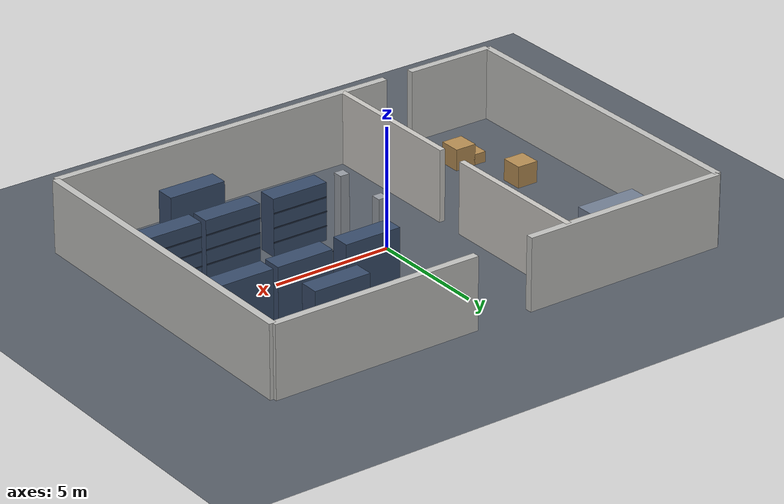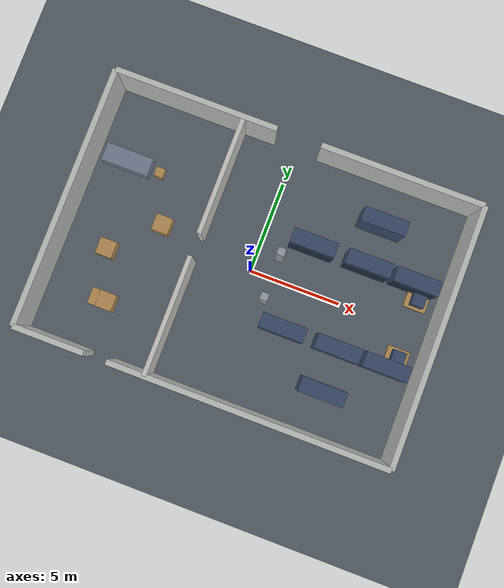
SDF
<?xml version="1.0" ?>
<sdf version="1.9">
  <world name="go2_patrol">

    <gravity>0 0 0</gravity>
    <physics name="2ms" type="dartsim">
      <max_step_size>0.002</max_step_size>
      <real_time_factor>1.0</real_time_factor>
    </physics>

    <!-- Explicit systems so sensors/physics/scene run reliably. -->
    <plugin filename="gz-sim-physics-system" name="gz::sim::systems::Physics"/>
    <plugin filename="gz-sim-sensors-system" name="gz::sim::systems::Sensors">
      <render_engine>ogre2</render_engine>
    </plugin>
    <plugin filename="gz-sim-scene-broadcaster-system" name="gz::sim::systems::SceneBroadcaster"/>
    <plugin filename="gz-sim-user-commands-system" name="gz::sim::systems::UserCommands"/>
    <!-- IMU sensors are handled by a dedicated system plugin (not the Sensors
         system above); without it no /imu topic is produced. -->
    <plugin filename="gz-sim-imu-system" name="gz::sim::systems::Imu"/>

    <scene>
      <ambient>0.42 0.42 0.47</ambient>
      <background>0.62 0.68 0.74</background>
      <grid>false</grid>
      <shadows>false</shadows>
    </scene>

    <!-- Flow-first lighting (iGPU): one soft directional sun with NO shadow cast
         plus two warm point fills inside the hall. Turn cast_shadows on below
         only for a screenshot. -->
    <light type="directional" name="sun">
      <cast_shadows>false</cast_shadows>
      <pose>0 0 10 0 0 0</pose>
      <diffuse>0.78 0.76 0.7 1</diffuse>
      <specular>0.15 0.15 0.15 1</specular>
      <attenuation>
        <range>1000</range>
        <constant>0.9</constant>
        <linear>0.01</linear>
        <quadratic>0.001</quadratic>
      </attenuation>
      <direction>-0.45 0.1 -0.9</direction>
    </light>

    <light type="point" name="hall_fill_a">
      <cast_shadows>false</cast_shadows>
      <pose>1.5 3.0 3.2 0 0 0</pose>
      <diffuse>0.85 0.82 0.75 1</diffuse>
      <specular>0.05 0.05 0.05 1</specular>
      <attenuation>
        <range>25</range>
        <constant>0.7</constant>
        <linear>0.05</linear>
        <quadratic>0.01</quadratic>
      </attenuation>
    </light>

    <light type="point" name="hall_fill_b">
      <cast_shadows>false</cast_shadows>
      <pose>4.0 -3.0 2.6 0 0 0</pose>
      <diffuse>0.7 0.72 0.78 1</diffuse>
      <specular>0.05 0.05 0.05 1</specular>
      <attenuation>
        <range>20</range>
        <constant>0.7</constant>
        <linear>0.06</linear>
        <quadratic>0.01</quadratic>
      </attenuation>
    </light>

    <!-- Warehouse floor (epoxy grey-blue). -->
    <model name="ground_plane">
      <static>true</static>
      <link name="link">
        <collision name="collision">
          <geometry><plane><normal>0 0 1</normal><size>100 100</size></plane></geometry>
        </collision>
        <visual name="visual">
          <geometry><plane><normal>0 0 1</normal><size>100 100</size></plane></geometry>
          <material>
            <ambient>0.30 0.33 0.36 1</ambient>
            <diffuse>0.34 0.37 0.41 1</diffuse>
          </material>
        </visual>
      </link>
    </model>

    <!-- ============ SCENE_BEGIN (go2_scene.py managed) ============ -->
    <model name="scene_indoor">
      <static>true</static>
      <link name="fixed">
        <visual name="vis_0">
          <pose>-5.6000 7.0000 1.5000 0 0 0</pose>
          <geometry><box><size>8.8000 0.3000 3.0000</size></box></geometry>
          <material>
            <ambient>0.760 0.760 0.750 1</ambient>
            <diffuse>0.760 0.760 0.750 1</diffuse>
          </material>
        </visual>
        <collision name="col_0">
          <pose>-5.6000 7.0000 1.5000 0 0 0</pose>
          <geometry><box><size>8.8000 0.3000 3.0000</size></box></geometry>
        </collision>
        <visual name="vis_1">
          <pose>5.6000 7.0000 1.5000 0 0 0</pose>
          <geometry><box><size>8.8000 0.3000 3.0000</size></box></geometry>
          <material>
            <ambient>0.760 0.760 0.750 1</ambient>
            <diffuse>0.760 0.760 0.750 1</diffuse>
          </material>
        </visual>
        <collision name="col_1">
          <pose>5.6000 7.0000 1.5000 0 0 0</pose>
          <geometry><box><size>8.8000 0.3000 3.0000</size></box></geometry>
        </collision>
        <visual name="vis_2">
          <pose>-8.1000 -7.0000 1.5000 0 0 0</pose>
          <geometry><box><size>3.8000 0.3000 3.0000</size></box></geometry>
          <material>
            <ambient>0.760 0.760 0.750 1</ambient>
            <diffuse>0.760 0.760 0.750 1</diffuse>
          </material>
        </visual>
        <collision name="col_2">
          <pose>-8.1000 -7.0000 1.5000 0 0 0</pose>
          <geometry><box><size>3.8000 0.3000 3.0000</size></box></geometry>
        </collision>
        <visual name="vis_3">
          <pose>2.5000 -7.0000 1.5000 0 0 0</pose>
          <geometry><box><size>15.0000 0.3000 3.0000</size></box></geometry>
          <material>
            <ambient>0.760 0.760 0.750 1</ambient>
            <diffuse>0.760 0.760 0.750 1</diffuse>
          </material>
        </visual>
        <collision name="col_3">
          <pose>2.5000 -7.0000 1.5000 0 0 0</pose>
          <geometry><box><size>15.0000 0.3000 3.0000</size></box></geometry>
        </collision>
        <visual name="vis_4">
          <pose>-10.0000 0.0000 1.5000 0 0 0</pose>
          <geometry><box><size>0.3000 14.0000 3.0000</size></box></geometry>
          <material>
            <ambient>0.760 0.760 0.750 1</ambient>
            <diffuse>0.760 0.760 0.750 1</diffuse>
          </material>
        </visual>
        <collision name="col_4">
          <pose>-10.0000 0.0000 1.5000 0 0 0</pose>
          <geometry><box><size>0.3000 14.0000 3.0000</size></box></geometry>
        </collision>
        <visual name="vis_5">
          <pose>10.0000 0.0000 1.5000 0 0 0</pose>
          <geometry><box><size>0.3000 14.0000 3.0000</size></box></geometry>
          <material>
            <ambient>0.760 0.760 0.750 1</ambient>
            <diffuse>0.760 0.760 0.750 1</diffuse>
          </material>
        </visual>
        <collision name="col_5">
          <pose>10.0000 0.0000 1.5000 0 0 0</pose>
          <geometry><box><size>0.3000 14.0000 3.0000</size></box></geometry>
        </collision>
        <visual name="vis_6">
          <pose>-3.0000 -3.8000 1.5000 0 0 0</pose>
          <geometry><box><size>0.2400 6.4000 3.0000</size></box></geometry>
          <material>
            <ambient>0.800 0.790 0.770 1</ambient>
            <diffuse>0.800 0.790 0.770 1</diffuse>
          </material>
        </visual>
        <collision name="col_6">
          <pose>-3.0000 -3.8000 1.5000 0 0 0</pose>
          <geometry><box><size>0.2400 6.4000 3.0000</size></box></geometry>
        </collision>
        <visual name="vis_7">
          <pose>-3.0000 3.8000 1.5000 0 0 0</pose>
          <geometry><box><size>0.2400 6.4000 3.0000</size></box></geometry>
          <material>
            <ambient>0.800 0.790 0.770 1</ambient>
            <diffuse>0.800 0.790 0.770 1</diffuse>
          </material>
        </visual>
        <collision name="col_7">
          <pose>-3.0000 3.8000 1.5000 0 0 0</pose>
          <geometry><box><size>0.2400 6.4000 3.0000</size></box></geometry>
        </collision>
        <visual name="vis_8">
          <pose>2.6000 2.3000 1.2000 0 0 0</pose>
          <geometry><box><size>2.4000 0.8000 2.4000</size></box></geometry>
          <material>
            <ambient>0.220 0.300 0.420 1</ambient>
            <diffuse>0.220 0.300 0.420 1</diffuse>
          </material>
        </visual>
        <collision name="col_8">
          <pose>2.6000 2.3000 1.2000 0 0 0</pose>
          <geometry><box><size>2.4000 0.8000 2.4000</size></box></geometry>
        </collision>
        <visual name="vis_9">
          <pose>2.6000 1.8900 0.6000 0 0 0</pose>
          <geometry><box><size>2.4000 0.0200 0.0500</size></box></geometry>
          <material>
            <ambient>0.130 0.180 0.260 1</ambient>
            <diffuse>0.130 0.180 0.260 1</diffuse>
          </material>
        </visual>
        <collision name="col_9">
          <pose>2.6000 1.8900 0.6000 0 0 0</pose>
          <geometry><box><size>2.4000 0.0200 0.0500</size></box></geometry>
        </collision>
        <visual name="vis_10">
          <pose>2.6000 1.8900 1.2000 0 0 0</pose>
          <geometry><box><size>2.4000 0.0200 0.0500</size></box></geometry>
          <material>
            <ambient>0.130 0.180 0.260 1</ambient>
            <diffuse>0.130 0.180 0.260 1</diffuse>
          </material>
        </visual>
        <collision name="col_10">
          <pose>2.6000 1.8900 1.2000 0 0 0</pose>
          <geometry><box><size>2.4000 0.0200 0.0500</size></box></geometry>
        </collision>
        <visual name="vis_11">
          <pose>2.6000 1.8900 1.8000 0 0 0</pose>
          <geometry><box><size>2.4000 0.0200 0.0500</size></box></geometry>
          <material>
            <ambient>0.130 0.180 0.260 1</ambient>
            <diffuse>0.130 0.180 0.260 1</diffuse>
          </material>
        </visual>
        <collision name="col_11">
          <pose>2.6000 1.8900 1.8000 0 0 0</pose>
          <geometry><box><size>2.4000 0.0200 0.0500</size></box></geometry>
        </collision>
        <visual name="vis_12">
          <pose>5.6000 2.3000 1.2000 0 0 0</pose>
          <geometry><box><size>2.4000 0.8000 2.4000</size></box></geometry>
          <material>
            <ambient>0.220 0.300 0.420 1</ambient>
            <diffuse>0.220 0.300 0.420 1</diffuse>
          </material>
        </visual>
        <collision name="col_12">
          <pose>5.6000 2.3000 1.2000 0 0 0</pose>
          <geometry><box><size>2.4000 0.8000 2.4000</size></box></geometry>
        </collision>
        <visual name="vis_13">
          <pose>5.6000 1.8900 0.6000 0 0 0</pose>
          <geometry><box><size>2.4000 0.0200 0.0500</size></box></geometry>
          <material>
            <ambient>0.130 0.180 0.260 1</ambient>
            <diffuse>0.130 0.180 0.260 1</diffuse>
          </material>
        </visual>
        <collision name="col_13">
          <pose>5.6000 1.8900 0.6000 0 0 0</pose>
          <geometry><box><size>2.4000 0.0200 0.0500</size></box></geometry>
        </collision>
        <visual name="vis_14">
          <pose>5.6000 1.8900 1.2000 0 0 0</pose>
          <geometry><box><size>2.4000 0.0200 0.0500</size></box></geometry>
          <material>
            <ambient>0.130 0.180 0.260 1</ambient>
            <diffuse>0.130 0.180 0.260 1</diffuse>
          </material>
        </visual>
        <collision name="col_14">
          <pose>5.6000 1.8900 1.2000 0 0 0</pose>
          <geometry><box><size>2.4000 0.0200 0.0500</size></box></geometry>
        </collision>
        <visual name="vis_15">
          <pose>5.6000 1.8900 1.8000 0 0 0</pose>
          <geometry><box><size>2.4000 0.0200 0.0500</size></box></geometry>
          <material>
            <ambient>0.130 0.180 0.260 1</ambient>
            <diffuse>0.130 0.180 0.260 1</diffuse>
          </material>
        </visual>
        <collision name="col_15">
          <pose>5.6000 1.8900 1.8000 0 0 0</pose>
          <geometry><box><size>2.4000 0.0200 0.0500</size></box></geometry>
        </collision>
        <visual name="vis_16">
          <pose>8.2000 2.3000 1.2000 0 0 0</pose>
          <geometry><box><size>2.4000 0.8000 2.4000</size></box></geometry>
          <material>
            <ambient>0.220 0.300 0.420 1</ambient>
            <diffuse>0.220 0.300 0.420 1</diffuse>
          </material>
        </visual>
        <collision name="col_16">
          <pose>8.2000 2.3000 1.2000 0 0 0</pose>
          <geometry><box><size>2.4000 0.8000 2.4000</size></box></geometry>
        </collision>
        <visual name="vis_17">
          <pose>8.2000 1.8900 0.6000 0 0 0</pose>
          <geometry><box><size>2.4000 0.0200 0.0500</size></box></geometry>
          <material>
            <ambient>0.130 0.180 0.260 1</ambient>
            <diffuse>0.130 0.180 0.260 1</diffuse>
          </material>
        </visual>
        <collision name="col_17">
          <pose>8.2000 1.8900 0.6000 0 0 0</pose>
          <geometry><box><size>2.4000 0.0200 0.0500</size></box></geometry>
        </collision>
        <visual name="vis_18">
          <pose>8.2000 1.8900 1.2000 0 0 0</pose>
          <geometry><box><size>2.4000 0.0200 0.0500</size></box></geometry>
          <material>
            <ambient>0.130 0.180 0.260 1</ambient>
            <diffuse>0.130 0.180 0.260 1</diffuse>
          </material>
        </visual>
        <collision name="col_18">
          <pose>8.2000 1.8900 1.2000 0 0 0</pose>
          <geometry><box><size>2.4000 0.0200 0.0500</size></box></geometry>
        </collision>
        <visual name="vis_19">
          <pose>8.2000 1.8900 1.8000 0 0 0</pose>
          <geometry><box><size>2.4000 0.0200 0.0500</size></box></geometry>
          <material>
            <ambient>0.130 0.180 0.260 1</ambient>
            <diffuse>0.130 0.180 0.260 1</diffuse>
          </material>
        </visual>
        <collision name="col_19">
          <pose>8.2000 1.8900 1.8000 0 0 0</pose>
          <geometry><box><size>2.4000 0.0200 0.0500</size></box></geometry>
        </collision>
        <visual name="vis_20">
          <pose>2.6000 -2.3000 1.2000 0 0 0</pose>
          <geometry><box><size>2.4000 0.8000 2.4000</size></box></geometry>
          <material>
            <ambient>0.220 0.300 0.420 1</ambient>
            <diffuse>0.220 0.300 0.420 1</diffuse>
          </material>
        </visual>
        <collision name="col_20">
          <pose>2.6000 -2.3000 1.2000 0 0 0</pose>
          <geometry><box><size>2.4000 0.8000 2.4000</size></box></geometry>
        </collision>
        <visual name="vis_21">
          <pose>2.6000 -1.8900 0.6000 0 0 0</pose>
          <geometry><box><size>2.4000 0.0200 0.0500</size></box></geometry>
          <material>
            <ambient>0.130 0.180 0.260 1</ambient>
            <diffuse>0.130 0.180 0.260 1</diffuse>
          </material>
        </visual>
        <collision name="col_21">
          <pose>2.6000 -1.8900 0.6000 0 0 0</pose>
          <geometry><box><size>2.4000 0.0200 0.0500</size></box></geometry>
        </collision>
        <visual name="vis_22">
          <pose>2.6000 -1.8900 1.2000 0 0 0</pose>
          <geometry><box><size>2.4000 0.0200 0.0500</size></box></geometry>
          <material>
            <ambient>0.130 0.180 0.260 1</ambient>
            <diffuse>0.130 0.180 0.260 1</diffuse>
          </material>
        </visual>
        <collision name="col_22">
          <pose>2.6000 -1.8900 1.2000 0 0 0</pose>
          <geometry><box><size>2.4000 0.0200 0.0500</size></box></geometry>
        </collision>
        <visual name="vis_23">
          <pose>2.6000 -1.8900 1.8000 0 0 0</pose>
          <geometry><box><size>2.4000 0.0200 0.0500</size></box></geometry>
          <material>
            <ambient>0.130 0.180 0.260 1</ambient>
            <diffuse>0.130 0.180 0.260 1</diffuse>
          </material>
        </visual>
        <collision name="col_23">
          <pose>2.6000 -1.8900 1.8000 0 0 0</pose>
          <geometry><box><size>2.4000 0.0200 0.0500</size></box></geometry>
        </collision>
        <visual name="vis_24">
          <pose>5.6000 -2.3000 1.2000 0 0 0</pose>
          <geometry><box><size>2.4000 0.8000 2.4000</size></box></geometry>
          <material>
            <ambient>0.220 0.300 0.420 1</ambient>
            <diffuse>0.220 0.300 0.420 1</diffuse>
          </material>
        </visual>
        <collision name="col_24">
          <pose>5.6000 -2.3000 1.2000 0 0 0</pose>
          <geometry><box><size>2.4000 0.8000 2.4000</size></box></geometry>
        </collision>
        <visual name="vis_25">
          <pose>5.6000 -1.8900 0.6000 0 0 0</pose>
          <geometry><box><size>2.4000 0.0200 0.0500</size></box></geometry>
          <material>
            <ambient>0.130 0.180 0.260 1</ambient>
            <diffuse>0.130 0.180 0.260 1</diffuse>
          </material>
        </visual>
        <collision name="col_25">
          <pose>5.6000 -1.8900 0.6000 0 0 0</pose>
          <geometry><box><size>2.4000 0.0200 0.0500</size></box></geometry>
        </collision>
        <visual name="vis_26">
          <pose>5.6000 -1.8900 1.2000 0 0 0</pose>
          <geometry><box><size>2.4000 0.0200 0.0500</size></box></geometry>
          <material>
            <ambient>0.130 0.180 0.260 1</ambient>
            <diffuse>0.130 0.180 0.260 1</diffuse>
          </material>
        </visual>
        <collision name="col_26">
          <pose>5.6000 -1.8900 1.2000 0 0 0</pose>
          <geometry><box><size>2.4000 0.0200 0.0500</size></box></geometry>
        </collision>
        <visual name="vis_27">
          <pose>5.6000 -1.8900 1.8000 0 0 0</pose>
          <geometry><box><size>2.4000 0.0200 0.0500</size></box></geometry>
          <material>
            <ambient>0.130 0.180 0.260 1</ambient>
            <diffuse>0.130 0.180 0.260 1</diffuse>
          </material>
        </visual>
        <collision name="col_27">
          <pose>5.6000 -1.8900 1.8000 0 0 0</pose>
          <geometry><box><size>2.4000 0.0200 0.0500</size></box></geometry>
        </collision>
        <visual name="vis_28">
          <pose>8.2000 -2.3000 1.2000 0 0 0</pose>
          <geometry><box><size>2.4000 0.8000 2.4000</size></box></geometry>
          <material>
            <ambient>0.220 0.300 0.420 1</ambient>
            <diffuse>0.220 0.300 0.420 1</diffuse>
          </material>
        </visual>
        <collision name="col_28">
          <pose>8.2000 -2.3000 1.2000 0 0 0</pose>
          <geometry><box><size>2.4000 0.8000 2.4000</size></box></geometry>
        </collision>
        <visual name="vis_29">
          <pose>8.2000 -1.8900 0.6000 0 0 0</pose>
          <geometry><box><size>2.4000 0.0200 0.0500</size></box></geometry>
          <material>
            <ambient>0.130 0.180 0.260 1</ambient>
            <diffuse>0.130 0.180 0.260 1</diffuse>
          </material>
        </visual>
        <collision name="col_29">
          <pose>8.2000 -1.8900 0.6000 0 0 0</pose>
          <geometry><box><size>2.4000 0.0200 0.0500</size></box></geometry>
        </collision>
        <visual name="vis_30">
          <pose>8.2000 -1.8900 1.2000 0 0 0</pose>
          <geometry><box><size>2.4000 0.0200 0.0500</size></box></geometry>
          <material>
            <ambient>0.130 0.180 0.260 1</ambient>
            <diffuse>0.130 0.180 0.260 1</diffuse>
          </material>
        </visual>
        <collision name="col_30">
          <pose>8.2000 -1.8900 1.2000 0 0 0</pose>
          <geometry><box><size>2.4000 0.0200 0.0500</size></box></geometry>
        </collision>
        <visual name="vis_31">
          <pose>8.2000 -1.8900 1.8000 0 0 0</pose>
          <geometry><box><size>2.4000 0.0200 0.0500</size></box></geometry>
          <material>
            <ambient>0.130 0.180 0.260 1</ambient>
            <diffuse>0.130 0.180 0.260 1</diffuse>
          </material>
        </visual>
        <collision name="col_31">
          <pose>8.2000 -1.8900 1.8000 0 0 0</pose>
          <geometry><box><size>2.4000 0.0200 0.0500</size></box></geometry>
        </collision>
        <visual name="vis_32">
          <pose>5.6000 4.6000 1.2000 0 0 0</pose>
          <geometry><box><size>2.4000 0.8000 2.4000</size></box></geometry>
          <material>
            <ambient>0.220 0.300 0.420 1</ambient>
            <diffuse>0.220 0.300 0.420 1</diffuse>
          </material>
        </visual>
        <collision name="col_32">
          <pose>5.6000 4.6000 1.2000 0 0 0</pose>
          <geometry><box><size>2.4000 0.8000 2.4000</size></box></geometry>
        </collision>
        <visual name="vis_33">
          <pose>5.6000 -4.6000 1.2000 0 0 0</pose>
          <geometry><box><size>2.4000 0.8000 2.4000</size></box></geometry>
          <material>
            <ambient>0.220 0.300 0.420 1</ambient>
            <diffuse>0.220 0.300 0.420 1</diffuse>
          </material>
        </visual>
        <collision name="col_33">
          <pose>5.6000 -4.6000 1.2000 0 0 0</pose>
          <geometry><box><size>2.4000 0.8000 2.4000</size></box></geometry>
        </collision>
        <visual name="vis_34">
          <pose>-6.5000 -4.2000 0.4500 0 0 0</pose>
          <geometry><box><size>0.9000 0.9000 0.9000</size></box></geometry>
          <material>
            <ambient>0.720 0.560 0.330 1</ambient>
            <diffuse>0.720 0.560 0.330 1</diffuse>
          </material>
        </visual>
        <collision name="col_34">
          <pose>-6.5000 -4.2000 0.4500 0 0 0</pose>
          <geometry><box><size>0.9000 0.9000 0.9000</size></box></geometry>
        </collision>
        <visual name="vis_35">
          <pose>-7.5000 -1.6000 0.4500 0 0 0</pose>
          <geometry><box><size>0.9000 0.9000 0.9000</size></box></geometry>
          <material>
            <ambient>0.720 0.560 0.330 1</ambient>
            <diffuse>0.720 0.560 0.330 1</diffuse>
          </material>
        </visual>
        <collision name="col_35">
          <pose>-7.5000 -1.6000 0.4500 0 0 0</pose>
          <geometry><box><size>0.9000 0.9000 0.9000</size></box></geometry>
        </collision>
        <visual name="vis_36">
          <pose>-5.2000 0.6000 0.4500 0 0 0</pose>
          <geometry><box><size>0.9000 0.9000 0.9000</size></box></geometry>
          <material>
            <ambient>0.720 0.560 0.330 1</ambient>
            <diffuse>0.720 0.560 0.330 1</diffuse>
          </material>
        </visual>
        <collision name="col_36">
          <pose>-5.2000 0.6000 0.4500 0 0 0</pose>
          <geometry><box><size>0.9000 0.9000 0.9000</size></box></geometry>
        </collision>
        <visual name="vis_37">
          <pose>-7.0000 -4.2000 0.2250 0 0 0</pose>
          <geometry><box><size>0.9000 0.9000 0.4500</size></box></geometry>
          <material>
            <ambient>0.720 0.560 0.330 1</ambient>
            <diffuse>0.720 0.560 0.330 1</diffuse>
          </material>
        </visual>
        <collision name="col_37">
          <pose>-7.0000 -4.2000 0.2250 0 0 0</pose>
          <geometry><box><size>0.9000 0.9000 0.4500</size></box></geometry>
        </collision>
        <visual name="vis_38">
          <pose>8.8000 1.6000 0.1250 0 0 0</pose>
          <geometry><box><size>1.2000 1.0000 0.2500</size></box></geometry>
          <material>
            <ambient>0.720 0.560 0.330 1</ambient>
            <diffuse>0.720 0.560 0.330 1</diffuse>
          </material>
        </visual>
        <collision name="col_38">
          <pose>8.8000 1.6000 0.1250 0 0 0</pose>
          <geometry><box><size>1.2000 1.0000 0.2500</size></box></geometry>
        </collision>
        <visual name="vis_39">
          <pose>8.8000 1.6000 0.5000 0 0 0</pose>
          <geometry><box><size>0.7000 0.7000 1.0000</size></box></geometry>
          <material>
            <ambient>0.220 0.300 0.420 1</ambient>
            <diffuse>0.220 0.300 0.420 1</diffuse>
          </material>
        </visual>
        <collision name="col_39">
          <pose>8.8000 1.6000 0.5000 0 0 0</pose>
          <geometry><box><size>0.7000 0.7000 1.0000</size></box></geometry>
        </collision>
        <visual name="vis_40">
          <pose>8.8000 -1.6000 0.1250 0 0 0</pose>
          <geometry><box><size>1.2000 1.0000 0.2500</size></box></geometry>
          <material>
            <ambient>0.720 0.560 0.330 1</ambient>
            <diffuse>0.720 0.560 0.330 1</diffuse>
          </material>
        </visual>
        <collision name="col_40">
          <pose>8.8000 -1.6000 0.1250 0 0 0</pose>
          <geometry><box><size>1.2000 1.0000 0.2500</size></box></geometry>
        </collision>
        <visual name="vis_41">
          <pose>8.8000 -1.6000 0.5000 0 0 0</pose>
          <geometry><box><size>0.7000 0.7000 1.0000</size></box></geometry>
          <material>
            <ambient>0.220 0.300 0.420 1</ambient>
            <diffuse>0.220 0.300 0.420 1</diffuse>
          </material>
        </visual>
        <collision name="col_41">
          <pose>8.8000 -1.6000 0.5000 0 0 0</pose>
          <geometry><box><size>0.7000 0.7000 1.0000</size></box></geometry>
        </collision>
        <visual name="vis_42">
          <pose>1.2000 1.2000 1.5000 0 0 0</pose>
          <geometry><box><size>0.4000 0.4000 3.0000</size></box></geometry>
          <material>
            <ambient>0.600 0.620 0.650 1</ambient>
            <diffuse>0.600 0.620 0.650 1</diffuse>
          </material>
        </visual>
        <collision name="col_42">
          <pose>1.2000 1.2000 1.5000 0 0 0</pose>
          <geometry><box><size>0.4000 0.4000 3.0000</size></box></geometry>
        </collision>
        <visual name="vis_43">
          <pose>1.2000 -1.2000 1.5000 0 0 0</pose>
          <geometry><box><size>0.4000 0.4000 3.0000</size></box></geometry>
          <material>
            <ambient>0.600 0.620 0.650 1</ambient>
            <diffuse>0.600 0.620 0.650 1</diffuse>
          </material>
        </visual>
        <collision name="col_43">
          <pose>1.2000 -1.2000 1.5000 0 0 0</pose>
          <geometry><box><size>0.4000 0.4000 3.0000</size></box></geometry>
        </collision>
        <visual name="vis_44">
          <pose>-8.2000 3.2000 0.4000 0 0 0</pose>
          <geometry><box><size>2.6000 1.0000 0.8000</size></box></geometry>
          <material>
            <ambient>0.450 0.500 0.580 1</ambient>
            <diffuse>0.450 0.500 0.580 1</diffuse>
          </material>
        </visual>
        <collision name="col_44">
          <pose>-8.2000 3.2000 0.4000 0 0 0</pose>
          <geometry><box><size>2.6000 1.0000 0.8000</size></box></geometry>
        </collision>
        <visual name="vis_45">
          <pose>-6.4000 3.2000 0.2500 0 0 0</pose>
          <geometry><box><size>0.5000 0.5000 0.5000</size></box></geometry>
          <material>
            <ambient>0.720 0.560 0.330 1</ambient>
            <diffuse>0.720 0.560 0.330 1</diffuse>
          </material>
        </visual>
        <collision name="col_45">
          <pose>-6.4000 3.2000 0.2500 0 0 0</pose>
          <geometry><box><size>0.5000 0.5000 0.5000</size></box></geometry>
        </collision>
      </link>
    </model>
<!-- ============ SCENE_END ============ -->
<!--GO2_MODEL_INSERT_HERE-->
  </world>
</sdf>
